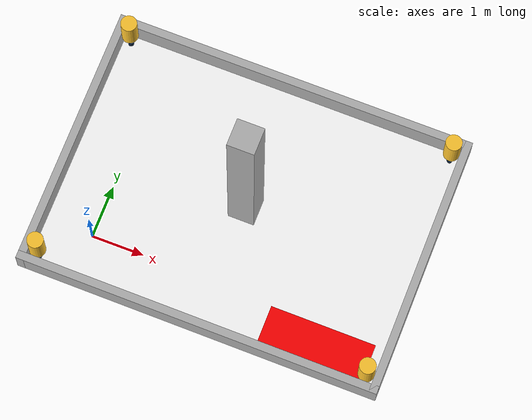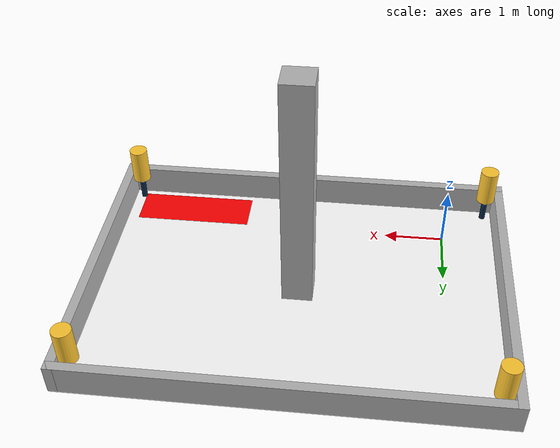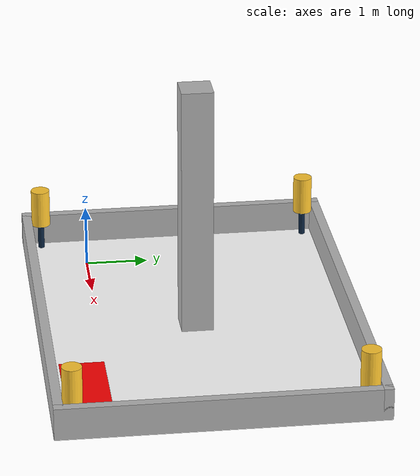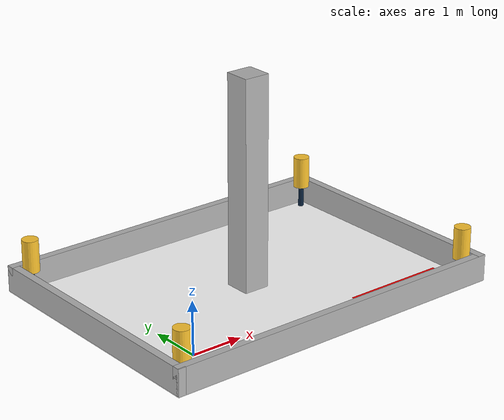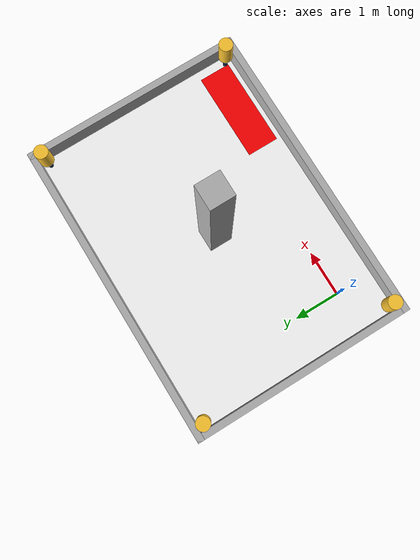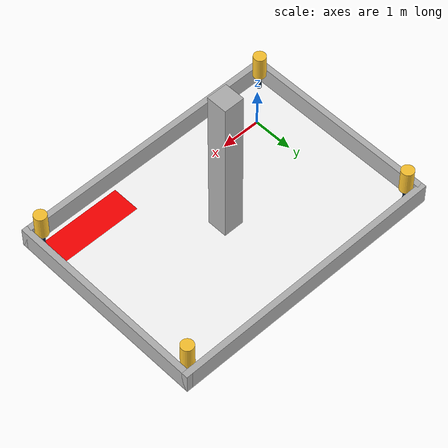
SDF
<sdf version="1.7">
 <world name="default">
  <gravity>0 0 -9.8</gravity>
  <magnetic_field>6e-06 2.3e-05 -4.2e-05</magnetic_field>
  <atmosphere type="adiabatic"/>
  <physics type="ode">
   <max_step_size>0.001</max_step_size>
   <real_time_factor>1</real_time_factor>
   <real_time_update_rate>1000</real_time_update_rate>
   <gravity>0 0 -9.8</gravity>
  </physics>
  <scene>
   <ambient>0.4 0.4 0.4 1</ambient>
   <background>0.7 0.7 0.7 1</background>
   <shadows>true</shadows>
   <grid>false</grid>
  </scene>
  <audio><device>default</device></audio>
  <spherical_coordinates>
   <surface_model>EARTH_WGS84</surface_model>
   <latitude_deg>0</latitude_deg>
   <longitude_deg>0</longitude_deg>
   <elevation>0</elevation>
   <heading_deg>0</heading_deg>
  </spherical_coordinates>
  <light name="sun" type="directional">
   <pose>0 0 10 0 -0 0</pose>
   <diffuse>0.7 0.7 0.7 0</diffuse>
   <specular>1 1 1 0</specular>
   <attenuation>
    <range>1000</range>
    <constant>0.9</constant>
    <linear>0.01</linear>
    <quadratic>0.001</quadratic>
   </attenuation>
   <direction>-1 -1 -1</direction>
   <spot><inner_angle>0</inner_angle><outer_angle>0</outer_angle><falloff>0</falloff></spot>
  </light>
  <include><uri>model://artemis_arena</uri></include>
 </world>
</sdf>

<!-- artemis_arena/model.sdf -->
<sdf version='1.7'>
  <model name='artemis_arena'>
    <pose>2.394 1.509 0 0 -0 1.5708</pose>
    <link name='ground_plane'>
      <collision name='collision'>
        <geometry>
          <plane>
            <normal>0 0 1</normal>
            <size>5 6.88</size>
          </plane>
        </geometry>
        <surface>
          <contact>
            <collide_bitmask>65535</collide_bitmask>
            <ode/>
          </contact>
          <friction>
            <ode>
              <mu>100</mu>
              <mu2>50</mu2>
              <slip1>0</slip1>
              <slip2>0</slip2>
            </ode>
            <torsional>
              <ode/>
            </torsional>
          </friction>
          <bounce/>
        </surface>
        <max_contacts>10</max_contacts>
      </collision>
      <visual name='visual'>
        <cast_shadows>0</cast_shadows>
        <geometry>
          <plane>
            <size>5 6.88</size>
            <normal>0 0 1</normal>
          </plane>
        </geometry>
        <material>
          <script>
            <uri>model://artemis_arena/model.material</uri>
            <name>artemis_arena/Image</name>
          </script>
          <pbr>
            <metal>
              <albedo_map>model://artemis_arena/materials/textures/apollo15_moon.jpg</albedo_map>
              <scale>0.5 0.5</scale>
            </metal>
          </pbr>
          <ambient>1 1 1 1</ambient>
          <diffuse>1 1 1 1</diffuse>
          <specular>1 1 1 1</specular>
        </material>
      </visual>
      <self_collide>0</self_collide>
      <enable_wind>0</enable_wind>
      <kinematic>0</kinematic>
    </link>
    <link name='Wall_1'>
      <collision name='Wall_1_Collision'>
        <geometry>
          <box>
            <size>6.88 0.15 0.5</size>
          </box>
        </geometry>
        <pose>0 0 0.25 0 -0 0</pose>
      </collision>
      <visual name='Wall_1_Visual'>
        <pose>0 0 0.25 0 -0 0</pose>
        <geometry>
          <box>
            <size>6.88 0.15 0.5</size>
          </box>
        </geometry>
        <material>
          <ambient>0.3 0.3 0.3 1</ambient>
          <diffuse>0.7 0.7 0.7 1</diffuse>
          <specular>1 1 1 1</specular>
        </material>
        <meta>
          <layer>0</layer>
        </meta>
      </visual>
      <pose>2.425 0 0 0 -0 -1.5708</pose>
    </link>
    <link name='Wall_2'>
      <collision name='Wall_2_Collision'>
        <geometry>
          <box>
            <size>5 0.15 0.5</size>
          </box>
        </geometry>
        <pose>0 0 0.25 0 -0 0</pose>
      </collision>
      <visual name='Wall_2_Visual'>
        <pose>0 0 0.25 0 -0 0</pose>
        <geometry>
          <box>
            <size>5 0.15 0.5</size>
          </box>
        </geometry>
        <material>
          <ambient>0.3 0.3 0.3 1</ambient>
          <diffuse>0.7 0.7 0.7 1</diffuse>
          <specular>1 1 1 1</specular>
        </material>
        <meta>
          <layer>0</layer>
        </meta>
      </visual>
      <pose>0 -3.365 0 0 -0 0</pose>
    </link>
    <link name='Wall_3'>
      <collision name='Wall_3_Collision'>
        <geometry>
          <box>
            <size>6.88 0.15 0.5</size>
          </box>
        </geometry>
        <pose>0 0 0.25 0 -0 0</pose>
      </collision>
      <visual name='Wall_3_Visual'>
        <pose>0 0 0.25 0 -0 0</pose>
        <geometry>
          <box>
            <size>6.88 0.15 0.5</size>
          </box>
        </geometry>
        <material>
          <ambient>0.3 0.3 0.3 1</ambient>
          <diffuse>0.7 0.7 0.7 1</diffuse>
          <specular>1 1 1 1</specular>
        </material>
        <meta>
          <layer>0</layer>
        </meta>
      </visual>
      <pose>-2.425 0 0 0 -0 -1.5708</pose>
    </link>
    <link name='Wall_4'>
      <collision name='Wall_4_Collision'>
        <geometry>
          <box>
            <size>5 0.15 0.5</size>
          </box>
        </geometry>
        <pose>0 0 0.25 0 -0 0</pose>
      </collision>
      <visual name='Wall_4_Visual'>
        <pose>0 0 0.25 0 -0 0</pose>
        <geometry>
          <box>
            <size>5 0.15 0.5</size>
          </box>
        </geometry>
        <material>
          <ambient>0.3 0.3 0.3 1</ambient>
          <diffuse>0.7 0.7 0.7 1</diffuse>
          <specular>1 1 1 1</specular>
        </material>
        <meta>
          <layer>0</layer>
        </meta>
      </visual>
      <pose>0 3.365 0 0 -0 0</pose>
    </link>
    <link name='column'>
      <collision name='column_collision'>
        <geometry>
          <box>
            <size>0.5 0.5 4</size>
          </box>
        </geometry>
        <surface>
          <friction>
            <ode/>
          </friction>
          <bounce/>
          <contact/>
        </surface>
      </collision>
      <visual name='column_visual'>
        <geometry>
          <box>
            <size>0.5 0.5 4</size>
          </box>
        </geometry>
        <material>
          <ambient>0.3 0.3 0.3 1</ambient>
          <diffuse>0.7 0.7 0.7 1</diffuse>
          <specular>1 1 1 1</specular>
        </material>
      </visual>
      <pose>0 0 2 0 -0 0</pose>
      <enable_wind>false</enable_wind>
    </link>
    <link name='berm_box'>
      <visual name='berm_box_visual'>
        <geometry>
          <box>
            <size>2 0.7 0.0001</size>
          </box>
        </geometry>
        <material>
          <ambient>1 0 0 1</ambient>
          <diffuse>1 0 0 1</diffuse>
          <specular>1 1 1 1</specular>
        </material>
      </visual>
      <pose>-1.9 -2.1 0.0001 0 -0 1.5708</pose>
      <enable_wind>false</enable_wind>
    </link>
    <include>
      <name>fiduciary_1</name>
      <pose>-2.2 3.14 0.0001 0 0 0</pose>
      <uri>model://fiduciary</uri>
    </include>
    <include>
      <name>fiduciary_2</name>
      <pose>2.2 3.14 0.0001 0 0 0</pose>
      <uri>model://fiduciary</uri>
    </include>
    <include>
      <name>fiduciary_3</name>
      <pose>2.2 -3.14 0.0001 0 0 0</pose>
      <uri>model://fiduciary</uri>
    </include>
    <include>
      <name>fiduciary_4</name>
      <pose>-2.2 -3.14 0.0001 0 0 0</pose>
      <uri>model://fiduciary</uri>
    </include>
    <static>1</static>
  </model>
</sdf>

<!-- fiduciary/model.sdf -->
<sdf version='1.7'>
  <model name='fiduciary'>
    <pose>0 0 0 0 0 0</pose>
    <link name='fiduciary'>
      <collision name='fiduciary_collision'>
        <geometry>
          <cylinder>
            <length>0.6096</length>
            <radius>0.1524</radius>
          </cylinder>
        </geometry>
      </collision>
      <visual name='fiduciary_visual'>
        <pose>0 0 0.7239 0 0 0</pose>
        <geometry>
          <cylinder>
            <length>0.6096</length>
            <radius>0.1524</radius>
          </cylinder>
        </geometry>
        <material>
          <ambient>1 0.776 0.184 1</ambient>
          <diffuse>1 0.776 0.184 1</diffuse>
          <specular>1 1 1 1</specular>
        </material>
        <meta>
          <layer>0</layer>
        </meta>
      </visual>
    </link>
    <link name='fiduciary_stand'>
      <collision name='fiduciary_stand_collision'>
        <geometry>
          <cylinder>
            <length>0.4572</length>
            <radius>0.0508</radius>
          </cylinder>
        </geometry>
      </collision>
      <visual name='fiduciary_stand_visual'>
        <pose>0 0 0.2286 0 0 0</pose>
        <geometry>
          <cylinder>
            <length>0.4572</length>
            <radius>0.0508</radius>
          </cylinder>
        </geometry>
        <material>
          <ambient>0.039 0.137 0.247 1</ambient>
          <diffuse>0.039 0.137 0.247 1</diffuse>
          <specular>1 1 1 1</specular>
        </material>
        <meta>
          <layer>0</layer>
        </meta>
      </visual>
    </link>
    <static>1</static>
  </model>
</sdf>
